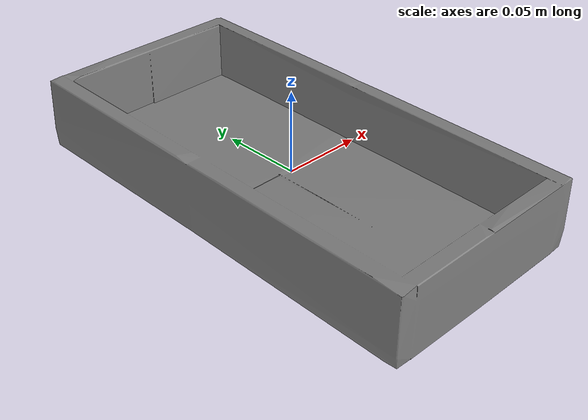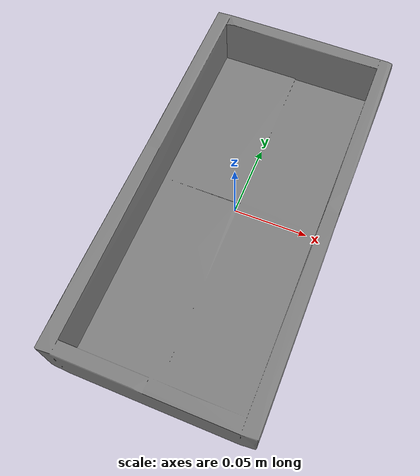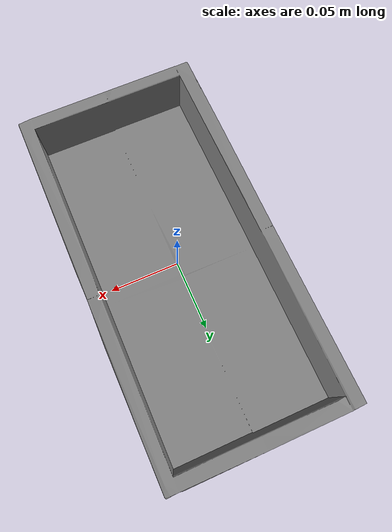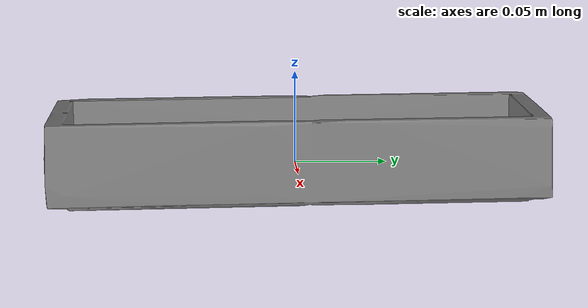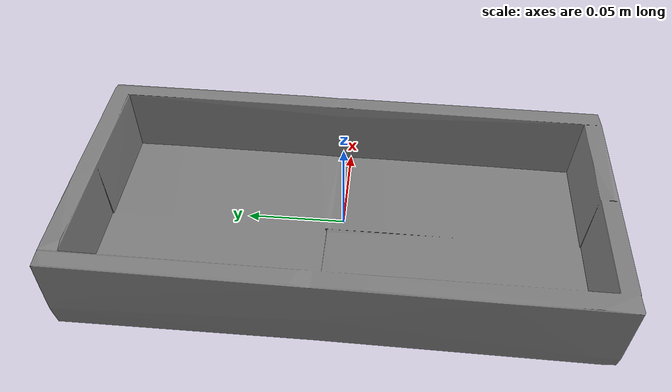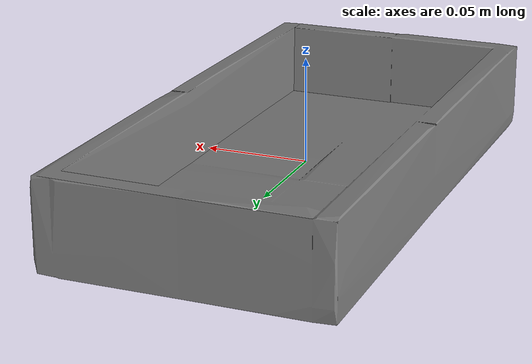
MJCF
<mujoco model="tray_Design_Ideas_Drawer_Store_Organizer_M">
  <default>
    <default class="visual">
      <geom group="2" type="mesh" contype="0" conaffinity="0" />
    </default>
    <default class="collision">
      <geom group="3" type="mesh" />
    </default>
  </default>
  <asset>
    <mesh file="tray_Design_Ideas_Drawer_Store_Organizer_M.stl" />
    <mesh file="tray_Design_Ideas_Drawer_Store_Organizer_M_collision_0.stl" />
    <mesh file="tray_Design_Ideas_Drawer_Store_Organizer_M_collision_1.stl" />
    <mesh file="tray_Design_Ideas_Drawer_Store_Organizer_M_collision_2.stl" />
    <mesh file="tray_Design_Ideas_Drawer_Store_Organizer_M_collision_3.stl" />
    <mesh file="tray_Design_Ideas_Drawer_Store_Organizer_M_collision_4.stl" />
    <mesh file="tray_Design_Ideas_Drawer_Store_Organizer_M_collision_5.stl" />
    <mesh file="tray_Design_Ideas_Drawer_Store_Organizer_M_collision_6.stl" />
    <mesh file="tray_Design_Ideas_Drawer_Store_Organizer_M_collision_7.stl" />
    <mesh file="tray_Design_Ideas_Drawer_Store_Organizer_M_collision_8.stl" />
    <mesh file="tray_Design_Ideas_Drawer_Store_Organizer_M_collision_9.stl" />
    <mesh file="tray_Design_Ideas_Drawer_Store_Organizer_M_collision_10.stl" />
    <mesh file="tray_Design_Ideas_Drawer_Store_Organizer_M_collision_11.stl" />
    <mesh file="tray_Design_Ideas_Drawer_Store_Organizer_M_collision_12.stl" />
    <mesh file="tray_Design_Ideas_Drawer_Store_Organizer_M_collision_13.stl" />
    <mesh file="tray_Design_Ideas_Drawer_Store_Organizer_M_collision_14.stl" />
    <mesh file="tray_Design_Ideas_Drawer_Store_Organizer_M_collision_15.stl" />
  </asset>
  <worldbody>
    <body name="tray_Design_Ideas_Drawer_Store_Organizer_M">
      <geom mesh="tray_Design_Ideas_Drawer_Store_Organizer_M" class="visual" />
      <geom mesh="tray_Design_Ideas_Drawer_Store_Organizer_M_collision_0" class="collision" />
      <geom mesh="tray_Design_Ideas_Drawer_Store_Organizer_M_collision_1" class="collision" />
      <geom mesh="tray_Design_Ideas_Drawer_Store_Organizer_M_collision_2" class="collision" />
      <geom mesh="tray_Design_Ideas_Drawer_Store_Organizer_M_collision_3" class="collision" />
      <geom mesh="tray_Design_Ideas_Drawer_Store_Organizer_M_collision_4" class="collision" />
      <geom mesh="tray_Design_Ideas_Drawer_Store_Organizer_M_collision_5" class="collision" />
      <geom mesh="tray_Design_Ideas_Drawer_Store_Organizer_M_collision_6" class="collision" />
      <geom mesh="tray_Design_Ideas_Drawer_Store_Organizer_M_collision_7" class="collision" />
      <geom mesh="tray_Design_Ideas_Drawer_Store_Organizer_M_collision_8" class="collision" />
      <geom mesh="tray_Design_Ideas_Drawer_Store_Organizer_M_collision_9" class="collision" />
      <geom mesh="tray_Design_Ideas_Drawer_Store_Organizer_M_collision_10" class="collision" />
      <geom mesh="tray_Design_Ideas_Drawer_Store_Organizer_M_collision_11" class="collision" />
      <geom mesh="tray_Design_Ideas_Drawer_Store_Organizer_M_collision_12" class="collision" />
      <geom mesh="tray_Design_Ideas_Drawer_Store_Organizer_M_collision_13" class="collision" />
      <geom mesh="tray_Design_Ideas_Drawer_Store_Organizer_M_collision_14" class="collision" />
      <geom mesh="tray_Design_Ideas_Drawer_Store_Organizer_M_collision_15" class="collision" />
    </body>
  </worldbody>
</mujoco>
